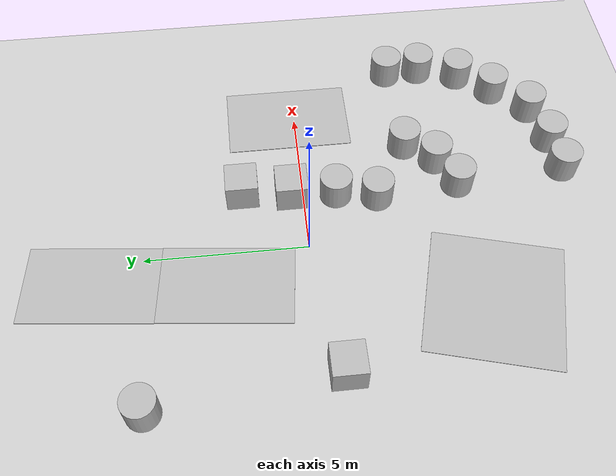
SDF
<?xml version="1.0" ?>
<sdf version="1.6">
  <world name="default">

    <include>
      <uri>model://sun</uri>
    </include>

    <include>
      <uri>model://asphalt_plane</uri>
    </include>

    <include>
      <uri>model://blue_tape_line</uri>
      <pose>5.1076 0.21125 0.05 0 0 0</pose>
      <name>line1</name>
    </include>

    <include>
      <uri>model://blue_tape_line</uri>
      <pose>-1.0799 2.5432 0.05 0 0 3.038</pose>
      <name>line2</name>
    </include>

    <include>
      <uri>model://blue_tape_line</uri>
      <pose>-0.684 6.5221 0.05 0 0 3.038</pose>
      <name>line3</name>
    </include>

    <include>
      <uri>model://blue_tape_corner</uri>
      <pose>-2.338 -5.196 0.05 0 0 -1.8344</pose>
      <name>corner2</name>
    </include>

    <model name='box2'>
      <static>1</static>
      <pose>1.9372 0.355 0.5 0 0 0</pose>
      <link name='link'>
        <collision name='collision'>
          <geometry>
            <box>
              <size>1 1 1</size>
            </box>
          </geometry>
          <max_contacts>10</max_contacts>
          <surface>
            <contact>
              <ode/>
            </contact>
            <bounce/>
            <friction>
              <torsional>
                <ode/>
              </torsional>
              <ode/>
            </friction>
          </surface>
        </collision>
        <visual name='visual'>
          <cast_shadows>0</cast_shadows>
          <geometry>
            <box>
              <size>1 1 1</size>
            </box>
          </geometry>
        </visual>
        <self_collide>0</self_collide>
        <enable_wind>0</enable_wind>
        <kinematic>0</kinematic>
      </link>
    </model>

    <model name='box3'>
      <static>1</static>
      <pose>2.125 1.8972 0.5 0 0 0</pose>
      <link name='link'>
        <collision name='collision'>
          <geometry>
            <box>
              <size>1 1 1</size>
            </box>
          </geometry>
          <max_contacts>10</max_contacts>
          <surface>
            <contact>
              <ode/>
            </contact>
            <bounce/>
            <friction>
              <torsional>
                <ode/>
              </torsional>
              <ode/>
            </friction>
          </surface>
        </collision>
        <visual name='visual'>
          <cast_shadows>0</cast_shadows>
          <geometry>
            <box>
              <size>1 1 1</size>
            </box>
          </geometry>
        </visual>
        <self_collide>0</self_collide>
        <enable_wind>0</enable_wind>
        <kinematic>0</kinematic>
      </link>
    </model>

    <model name='box4'>
      <static>1</static>
      <pose>-4.1445 -0.633 0.5 0 0 0</pose>
      <link name='link'>
        <collision name='collision'>
          <geometry>
            <box>
              <size>1 1 1</size>
            </box>
          </geometry>
          <max_contacts>10</max_contacts>
          <surface>
            <contact>
              <ode/>
            </contact>
            <bounce/>
            <friction>
              <torsional>
                <ode/>
              </torsional>
              <ode/>
            </friction>
          </surface>
        </collision>
        <visual name='visual'>
          <cast_shadows>0</cast_shadows>
          <geometry>
            <box>
              <size>1 1 1</size>
            </box>
          </geometry>
        </visual>
        <self_collide>0</self_collide>
        <enable_wind>0</enable_wind>
        <kinematic>0</kinematic>
      </link>
    </model>

    <model name='cyl1'>
      <static>1</static>
      <pose>1.5892 -2.305 0.5 0 0 0</pose>
      <link name='link'>
        <collision name='collision'>
          <geometry>
            <cylinder>
              <radius>0.5</radius>
              <length>1</length>
            </cylinder>
          </geometry>
          <max_contacts>10</max_contacts>
          <surface>
            <contact>
              <ode/>
            </contact>
            <bounce/>
            <friction>
              <torsional>
                <ode/>
              </torsional>
              <ode/>
            </friction>
          </surface>
        </collision>
        <visual name='visual'>
          <cast_shadows>0</cast_shadows>
          <geometry>
            <cylinder>
              <radius>0.5</radius>
              <length>1</length>
            </cylinder>
          </geometry>
        </visual>
        <self_collide>0</self_collide>
        <enable_wind>0</enable_wind>
        <kinematic>0</kinematic>
      </link>
    </model>

    <model name='cyl2'>
      <static>1</static>
      <pose>1.835 -1.0329 0.5 0 0 0</pose>
      <link name='link'>
        <collision name='collision'>
          <geometry>
            <cylinder>
              <radius>0.5</radius>
              <length>1</length>
            </cylinder>
          </geometry>
          <max_contacts>10</max_contacts>
          <surface>
            <contact>
              <ode/>
            </contact>
            <bounce/>
            <friction>
              <torsional>
                <ode/>
              </torsional>
              <ode/>
            </friction>
          </surface>
        </collision>
        <visual name='visual'>
          <cast_shadows>0</cast_shadows>
          <geometry>
            <cylinder>
              <radius>0.5</radius>
              <length>1</length>
            </cylinder>
          </geometry>
        </visual>
        <self_collide>0</self_collide>
        <enable_wind>0</enable_wind>
        <kinematic>0</kinematic>
      </link>
    </model>

    <model name='cyl3'>
      <static>1</static>
      <pose>-4.753 4.9328 0.5 0 0 0</pose>
      <link name='link'>
        <collision name='collision'>
          <geometry>
            <cylinder>
              <radius>0.5</radius>
              <length>1</length>
            </cylinder>
          </geometry>
          <max_contacts>10</max_contacts>
          <surface>
            <contact>
              <ode/>
            </contact>
            <bounce/>
            <friction>
              <torsional>
                <ode/>
              </torsional>
              <ode/>
            </friction>
          </surface>
        </collision>
        <visual name='visual'>
          <cast_shadows>0</cast_shadows>
          <geometry>
            <cylinder>
              <radius>0.5</radius>
              <length>1</length>
            </cylinder>
          </geometry>
        </visual>
        <self_collide>0</self_collide>
        <enable_wind>0</enable_wind>
        <kinematic>0</kinematic>
      </link>
    </model>

    <!--- Corners -->

    <model name='cyl4'>
      <static>1</static>
      <pose>6.771 -3.370 0.5 0 0 0</pose>
      <link name='link'>
        <collision name='collision'>
          <geometry>
            <cylinder>
              <radius>0.5</radius>
              <length>1</length>
            </cylinder>
          </geometry>
          <max_contacts>10</max_contacts>
          <surface>
            <contact>
              <ode/>
            </contact>
            <bounce/>
            <friction>
              <torsional>
                <ode/>
              </torsional>
              <ode/>
            </friction>
          </surface>
        </collision>
        <visual name='visual'>
          <cast_shadows>0</cast_shadows>
          <geometry>
            <cylinder>
              <radius>0.5</radius>
              <length>1</length>
            </cylinder>
          </geometry>
        </visual>
        <self_collide>0</self_collide>
        <enable_wind>0</enable_wind>
        <kinematic>0</kinematic>
      </link>
    </model>

    <model name='cyl5'>
      <static>1</static>
      <pose>6.808 -4.492 0.5 0 0 0</pose>
      <link name='link'>
        <collision name='collision'>
          <geometry>
            <cylinder>
              <radius>0.5</radius>
              <length>1</length>
            </cylinder>
          </geometry>
          <max_contacts>10</max_contacts>
          <surface>
            <contact>
              <ode/>
            </contact>
            <bounce/>
            <friction>
              <torsional>
                <ode/>
              </torsional>
              <ode/>
            </friction>
          </surface>
        </collision>
        <visual name='visual'>
          <cast_shadows>0</cast_shadows>
          <geometry>
            <cylinder>
              <radius>0.5</radius>
              <length>1</length>
            </cylinder>
          </geometry>
        </visual>
        <self_collide>0</self_collide>
        <enable_wind>0</enable_wind>
        <kinematic>0</kinematic>
      </link>
    </model>

    <model name='cyl6'>
      <static>1</static>
      <pose>6.404 -5.801 0.5 0 0 0</pose>
      <link name='link'>
        <collision name='collision'>
          <geometry>
            <cylinder>
              <radius>0.5</radius>
              <length>1</length>
            </cylinder>
          </geometry>
          <max_contacts>10</max_contacts>
          <surface>
            <contact>
              <ode/>
            </contact>
            <bounce/>
            <friction>
              <torsional>
                <ode/>
              </torsional>
              <ode/>
            </friction>
          </surface>
        </collision>
        <visual name='visual'>
          <cast_shadows>0</cast_shadows>
          <geometry>
            <cylinder>
              <radius>0.5</radius>
              <length>1</length>
            </cylinder>
          </geometry>
        </visual>
        <self_collide>0</self_collide>
        <enable_wind>0</enable_wind>
        <kinematic>0</kinematic>
      </link>
    </model>

    <model name='cyl7'>
      <static>1</static>
      <pose>5.600 -6.842 0.5 0 0 0</pose>
      <link name='link'>
        <collision name='collision'>
          <geometry>
            <cylinder>
              <radius>0.5</radius>
              <length>1</length>
            </cylinder>
          </geometry>
          <max_contacts>10</max_contacts>
          <surface>
            <contact>
              <ode/>
            </contact>
            <bounce/>
            <friction>
              <torsional>
                <ode/>
              </torsional>
              <ode/>
            </friction>
          </surface>
        </collision>
        <visual name='visual'>
          <cast_shadows>0</cast_shadows>
          <geometry>
            <cylinder>
              <radius>0.5</radius>
              <length>1</length>
            </cylinder>
          </geometry>
        </visual>
        <self_collide>0</self_collide>
        <enable_wind>0</enable_wind>
        <kinematic>0</kinematic>
      </link>
    </model>

    <model name='cyl8'>
      <static>1</static>
      <pose>4.646 -7.895 0.5 0 0 0</pose>
      <link name='link'>
        <collision name='collision'>
          <geometry>
            <cylinder>
              <radius>0.5</radius>
              <length>1</length>
            </cylinder>
          </geometry>
          <max_contacts>10</max_contacts>
          <surface>
            <contact>
              <ode/>
            </contact>
            <bounce/>
            <friction>
              <torsional>
                <ode/>
              </torsional>
              <ode/>
            </friction>
          </surface>
        </collision>
        <visual name='visual'>
          <cast_shadows>0</cast_shadows>
          <geometry>
            <cylinder>
              <radius>0.5</radius>
              <length>1</length>
            </cylinder>
          </geometry>
        </visual>
        <self_collide>0</self_collide>
        <enable_wind>0</enable_wind>
        <kinematic>0</kinematic>
      </link>
    </model>

    <model name='cyl9'>
      <static>1</static>
      <pose>3.308 -8.247 0.5 0 0 0</pose>
      <link name='link'>
        <collision name='collision'>
          <geometry>
            <cylinder>
              <radius>0.5</radius>
              <length>1</length>
            </cylinder>
          </geometry>
          <max_contacts>10</max_contacts>
          <surface>
            <contact>
              <ode/>
            </contact>
            <bounce/>
            <friction>
              <torsional>
                <ode/>
              </torsional>
              <ode/>
            </friction>
          </surface>
        </collision>
        <visual name='visual'>
          <cast_shadows>0</cast_shadows>
          <geometry>
            <cylinder>
              <radius>0.5</radius>
              <length>1</length>
            </cylinder>
          </geometry>
        </visual>
        <self_collide>0</self_collide>
        <enable_wind>0</enable_wind>
        <kinematic>0</kinematic>
      </link>
    </model>

    <model name='cyl10'>
      <static>1</static>
      <pose>2.115 -8.388 0.5 0 0 0</pose>
      <link name='link'>
        <collision name='collision'>
          <geometry>
            <cylinder>
              <radius>0.5</radius>
              <length>1</length>
            </cylinder>
          </geometry>
          <max_contacts>10</max_contacts>
          <surface>
            <contact>
              <ode/>
            </contact>
            <bounce/>
            <friction>
              <torsional>
                <ode/>
              </torsional>
              <ode/>
            </friction>
          </surface>
        </collision>
        <visual name='visual'>
          <cast_shadows>0</cast_shadows>
          <geometry>
            <cylinder>
              <radius>0.5</radius>
              <length>1</length>
            </cylinder>
          </geometry>
        </visual>
        <self_collide>0</self_collide>
        <enable_wind>0</enable_wind>
        <kinematic>0</kinematic>
      </link>
    </model>

    <!-- inside corner -->

    <model name='cyl11'>
      <static>1</static>
      <pose>3.526 -3.466 0.5 0 0 0</pose>
      <link name='link'>
        <collision name='collision'>
          <geometry>
            <cylinder>
              <radius>0.5</radius>
              <length>1</length>
            </cylinder>
          </geometry>
          <max_contacts>10</max_contacts>
          <surface>
            <contact>
              <ode/>
            </contact>
            <bounce/>
            <friction>
              <torsional>
                <ode/>
              </torsional>
              <ode/>
            </friction>
          </surface>
        </collision>
        <visual name='visual'>
          <cast_shadows>0</cast_shadows>
          <geometry>
            <cylinder>
              <radius>0.5</radius>
              <length>1</length>
            </cylinder>
          </geometry>
        </visual>
        <self_collide>0</self_collide>
        <enable_wind>0</enable_wind>
        <kinematic>0</kinematic>
      </link>
    </model>

    <model name='cyl12'>
      <static>1</static>
      <pose>2.832 -4.368 0.5 0 0 0</pose>
      <link name='link'>
        <collision name='collision'>
          <geometry>
            <cylinder>
              <radius>0.5</radius>
              <length>1</length>
            </cylinder>
          </geometry>
          <max_contacts>10</max_contacts>
          <surface>
            <contact>
              <ode/>
            </contact>
            <bounce/>
            <friction>
              <torsional>
                <ode/>
              </torsional>
              <ode/>
            </friction>
          </surface>
        </collision>
        <visual name='visual'>
          <cast_shadows>0</cast_shadows>
          <geometry>
            <cylinder>
              <radius>0.5</radius>
              <length>1</length>
            </cylinder>
          </geometry>
        </visual>
        <self_collide>0</self_collide>
        <enable_wind>0</enable_wind>
        <kinematic>0</kinematic>
      </link>
    </model>

    <model name='cyl13'>
      <static>1</static>
      <pose>1.833 -4.914 0.5 0 0 0</pose>
      <link name='link'>
        <collision name='collision'>
          <geometry>
            <cylinder>
              <radius>0.5</radius>
              <length>1</length>
            </cylinder>
          </geometry>
          <max_contacts>10</max_contacts>
          <surface>
            <contact>
              <ode/>
            </contact>
            <bounce/>
            <friction>
              <torsional>
                <ode/>
              </torsional>
              <ode/>
            </friction>
          </surface>
        </collision>
        <visual name='visual'>
          <cast_shadows>0</cast_shadows>
          <geometry>
            <cylinder>
              <radius>0.5</radius>
              <length>1</length>
            </cylinder>
          </geometry>
        </visual>
        <self_collide>0</self_collide>
        <enable_wind>0</enable_wind>
        <kinematic>0</kinematic>
      </link>
    </model>

  </world>
</sdf>

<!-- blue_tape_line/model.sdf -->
<sdf version="1.5">
  <model name="blue_tape_line">
    <static>true</static>
    <link name="link">
      <collision name="collision">
        <geometry>
          <box>
            <size>2.5 4 0.02</size>
          </box>
        </geometry>
      </collision>
      <visual name="visual">
        <cast_shadows>false</cast_shadows>
        <geometry>
          <box>
            <size>2.5 4 0.02</size>
          </box>
        </geometry>
        <material>
          <script>
            <uri>model://blue_tape_line/materials/scripts</uri>
            <uri>model://blue_tape_line/materials/textures</uri>
            <name>vrc/tape_line</name>
          </script>
        </material>
      </visual>
    </link>
  </model>
</sdf>

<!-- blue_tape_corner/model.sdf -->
<sdf version="1.5">
  <model name="blue_tape_corner">
    <static>true</static>
    <link name="link">
      <collision name="collision">
        <geometry>
          <box>
            <size>4 4 .02</size>
          </box>
        </geometry>
      </collision>
      <visual name="visual">
        <cast_shadows>false</cast_shadows>
        <geometry>
          <box>
            <size>4 4 .02</size>
          </box>
        </geometry>
        <material>
          <script>
            <uri>model://blue_tape_corner/materials/scripts</uri>
            <uri>model://blue_tape_corner/materials/textures</uri>
            <name>vrc/tape_corner</name>
          </script>
        </material>
      </visual>
    </link>
  </model>
</sdf>
